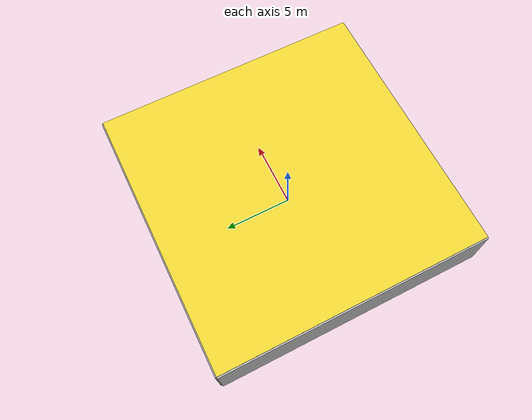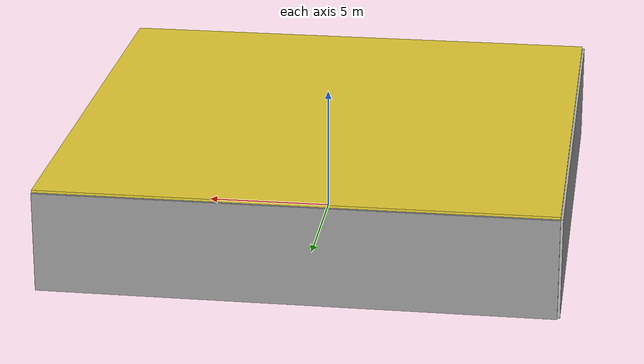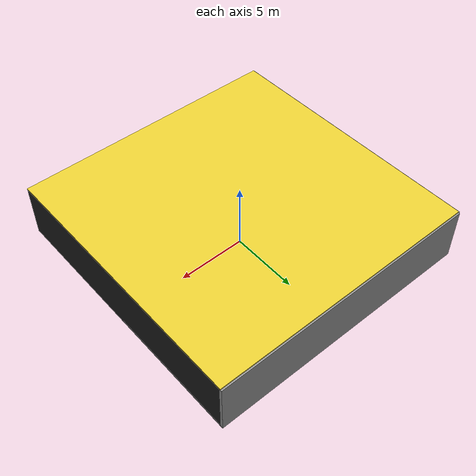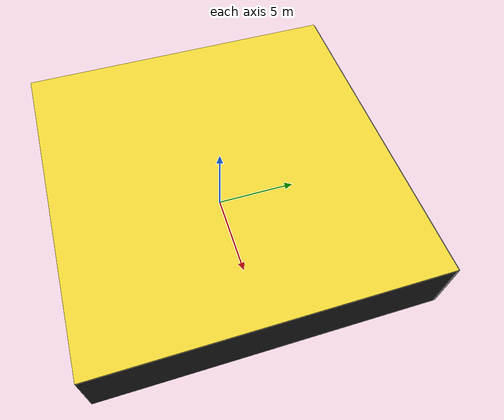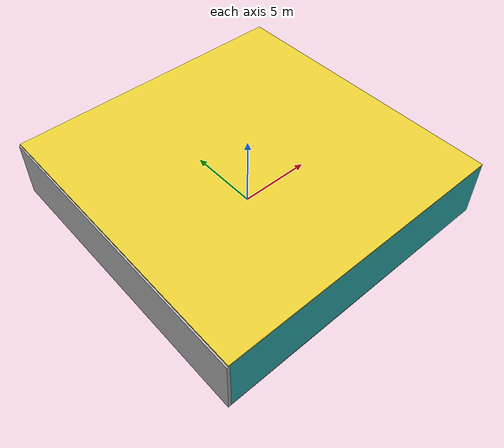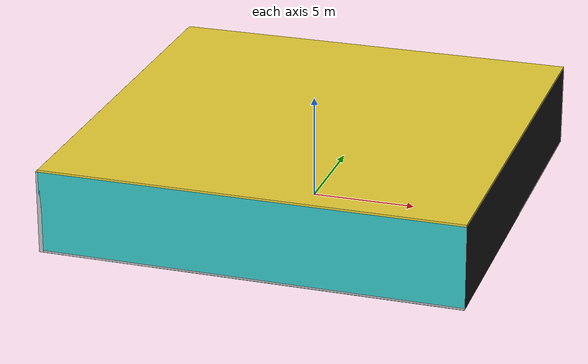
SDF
<sdf version="1.4">
 <world name="default">
  <physics type="ode">
   <max_step_size>0.001</max_step_size>
   <real_time_factor>1</real_time_factor>
   <real_time_update_rate>1000</real_time_update_rate>
   <gravity>0 0 -9.8</gravity>
  </physics>
  <scene><ambient>0.4 0.4 0.4 1</ambient><background>0.7 0.7 0.7 1</background><shadows>1</shadows></scene>
  <model name="Surrounding">
   <static>1</static>
   <link name="Ceiling">
    <collision name="Ceiling_Collision"><geometry><box><size>20 20 0.1</size></box></geometry></collision>
    <visual name="Ceiling_Visual">
     <geometry><box><size>20 20 0.1</size></box></geometry>
     <material>
      <script><uri>file://media/materials/scripts/gazebo.material</uri><name>Gazebo/ZincYellow</name></script>
     </material>
    </visual>
    <pose>0 0 4.05 0 0 0</pose>
   </link>
   <link name="Wall_South">
    <collision name="Wall_South_Collision">
     <geometry><box><size>20 0 4</size></box></geometry>
     <pose>0 0 2 0 -0 0</pose>
    </collision>
    <visual name="Wall_South_Visual">
     <pose>0 0 2 0 -0 0</pose>
     <geometry><box><size>20 0 4</size></box></geometry>
     <material>
      <script><uri>file://media/materials/scripts/gazebo.material</uri><name>Gazebo/Turquoise</name></script>
     </material>
    </visual>
    <velocity_decay><linear>0</linear><angular>0</angular></velocity_decay>
    <pose>0 -10 0 0 -0 0</pose>
   </link>
   <link name="Wall_East">
    <collision name="Wall_21_Collision">
     <geometry><box><size>20 0 4</size></box></geometry>
     <pose>0 0 2 0 -0 0</pose>
    </collision>
    <visual name="Wall_21_Visual">
     <pose>0 0 2 0 -0 0</pose>
     <geometry><box><size>20 0 4</size></box></geometry>
     <material>
      <script><uri>file://media/materials/scripts/gazebo.material</uri><name>Gazebo/FlatBlack</name></script>
     </material>
    </visual>
    <velocity_decay><linear>0</linear><angular>0</angular></velocity_decay>
    <pose>10 0 0 0 -0 1.5708</pose>
   </link>
   <link name="Wall_North">
    <collision name="Wall_22_Collision">
     <geometry><box><size>20 0.2 4</size></box></geometry>
     <pose>0 0 2 0 -0 0</pose>
    </collision>
    <visual name="Wall_22_Visual">
     <pose>0 0 2 0 -0 0</pose>
     <geometry><box><size>20 0.2 4</size></box></geometry>
     <material>
      <script><uri>file://media/materials/scripts/gazebo.material</uri><name>Gazebo/GreyGradientSky</name></script>
     </material>
    </visual>
    <velocity_decay><linear>0</linear><angular>0</angular></velocity_decay>
    <pose>0 10 0 0 -0 0</pose>
   </link>
   <link name="Wall_West">
    <collision name="Wall_23_Collision">
     <geometry><box><size>20 0.2 4</size></box></geometry>
     <pose>0 0 2 0 -0 0</pose>
    </collision>
    <visual name="Wall_23_Visual">
     <pose>0 0 2 0 -0 0</pose>
     <geometry><box><size>20 0.2 4</size></box></geometry>
     <material>
      <script><uri>file://media/materials/scripts/gazebo.material</uri><name>Gazebo/PioneerBody</name></script>
     </material>
    </visual>
    <velocity_decay><linear>0</linear><angular>0</angular></velocity_decay>
    <pose>-10 0 0 0 0 -1.5708</pose>
   </link>
   <link name="Ground_link">
    <collision name="collision">
     <pose>0 0 .05 0 -0 0</pose>
     <geometry><box><size>20 20 0.1</size></box></geometry>
    </collision>
    <visual name="visual">
     <pose>0 0 .05 0 -0 0</pose>
     <geometry><box><size>20 20 0.1</size></box></geometry>
     <material>
      <script><uri>file://media/materials/scripts/gazebo.material</uri><name>Gazebo/PioneerBody</name></script>
     </material>
    </visual>
   </link>
   <static>1</static>
  </model>
  <spherical_coordinates>
   <surface_model>EARTH_WGS84</surface_model>
   <latitude_deg>0</latitude_deg>
   <longitude_deg>0</longitude_deg>
   <elevation>0</elevation>
   <heading_deg>0</heading_deg>
  </spherical_coordinates>
  <light name="lightball_0" type="diffuse">
   <diffuse>0.8 0.8 0.8 1</diffuse>
   <specular>0.2 0.2 0.2 1</specular>
   <attenuation>
    <range>100</range>
    <constant>0.7</constant>
    <linear>0.01</linear>
    <quadratic>0.001</quadratic>
   </attenuation>
   <direction>-0.5 0.1 -0.9</direction>
   <pose>4.60912602959 -9.05932097512 1.69773850497 0 0 0</pose>
  </light>
  <light name="lightball_1" type="diffuse">
   <diffuse>0.8 0.8 0.8 1</diffuse>
   <specular>0.2 0.2 0.2 1</specular>
   <attenuation>
    <range>100</range>
    <constant>0.7</constant>
    <linear>0.01</linear>
    <quadratic>0.001</quadratic>
   </attenuation>
   <direction>-0.5 0.1 -0.9</direction>
   <pose>-0.503643406516 1.7288000886 2.5571509189 0 0 0</pose>
  </light>
  <light name="lightball_2" type="diffuse">
   <diffuse>0.8 0.8 0.8 1</diffuse>
   <specular>0.2 0.2 0.2 1</specular>
   <attenuation>
    <range>100</range>
    <constant>0.7</constant>
    <linear>0.01</linear>
    <quadratic>0.001</quadratic>
   </attenuation>
   <direction>-0.5 0.1 -0.9</direction>
   <pose>0.613130101261 8.39001754633 1.70651985029 0 0 0</pose>
  </light>
  <light name="lightball_3" type="diffuse">
   <diffuse>0.8 0.8 0.8 1</diffuse>
   <specular>0.2 0.2 0.2 1</specular>
   <attenuation>
    <range>100</range>
    <constant>0.7</constant>
    <linear>0.01</linear>
    <quadratic>0.001</quadratic>
   </attenuation>
   <direction>-0.5 0.1 -0.9</direction>
   <pose>7.92157115056 8.50523551851 2.05483833613 0 0 0</pose>
  </light>
  <light name="lightball_4" type="diffuse">
   <diffuse>0.8 0.8 0.8 1</diffuse>
   <specular>0.2 0.2 0.2 1</specular>
   <attenuation>
    <range>100</range>
    <constant>0.7</constant>
    <linear>0.01</linear>
    <quadratic>0.001</quadratic>
   </attenuation>
   <direction>-0.5 0.1 -0.9</direction>
   <pose>7.24344897972 -0.100753974945 2.08916136299 0 0 0</pose>
  </light>
  <light name="lightball_5" type="diffuse">
   <diffuse>0.8 0.8 0.8 1</diffuse>
   <specular>0.2 0.2 0.2 1</specular>
   <attenuation>
    <range>100</range>
    <constant>0.7</constant>
    <linear>0.01</linear>
    <quadratic>0.001</quadratic>
   </attenuation>
   <direction>-0.5 0.1 -0.9</direction>
   <pose>-7.38255898412 -5.04367644497 2.34982618559 0 0 0</pose>
  </light>
  <light name="lightball_6" type="diffuse">
   <diffuse>0.8 0.8 0.8 1</diffuse>
   <specular>0.2 0.2 0.2 1</specular>
   <attenuation>
    <range>100</range>
    <constant>0.7</constant>
    <linear>0.01</linear>
    <quadratic>0.001</quadratic>
   </attenuation>
   <direction>-0.5 0.1 -0.9</direction>
   <pose>-1.19250443264 -7.32526457951 3.22059563762 0 0 0</pose>
  </light>
  <light name="lightball_7" type="diffuse">
   <diffuse>0.8 0.8 0.8 1</diffuse>
   <specular>0.2 0.2 0.2 1</specular>
   <attenuation>
    <range>100</range>
    <constant>0.7</constant>
    <linear>0.01</linear>
    <quadratic>0.001</quadratic>
   </attenuation>
   <direction>-0.5 0.1 -0.9</direction>
   <pose>4.13018330333 -1.49516430921 2.12728119698 0 0 0</pose>
  </light>
  <light name="lightball_8" type="diffuse">
   <diffuse>0.8 0.8 0.8 1</diffuse>
   <specular>0.2 0.2 0.2 1</specular>
   <attenuation>
    <range>100</range>
    <constant>0.7</constant>
    <linear>0.01</linear>
    <quadratic>0.001</quadratic>
   </attenuation>
   <direction>-0.5 0.1 -0.9</direction>
   <pose>1.27246823989 -1.72868148563 2.7664325409 0 0 0</pose>
  </light>
  <light name="lightball_9" type="diffuse">
   <diffuse>0.8 0.8 0.8 1</diffuse>
   <specular>0.2 0.2 0.2 1</specular>
   <attenuation>
    <range>100</range>
    <constant>0.7</constant>
    <linear>0.01</linear>
    <quadratic>0.001</quadratic>
   </attenuation>
   <direction>-0.5 0.1 -0.9</direction>
   <pose>0.169196584648 -2.38551404277 3.49490582748 0 0 0</pose>
  </light>
  <light name="lightball_10" type="diffuse">
   <diffuse>0.8 0.8 0.8 1</diffuse>
   <specular>0.2 0.2 0.2 1</specular>
   <attenuation>
    <range>100</range>
    <constant>0.7</constant>
    <linear>0.01</linear>
    <quadratic>0.001</quadratic>
   </attenuation>
   <direction>-0.5 0.1 -0.9</direction>
   <pose>-5.87376494429 1.22936355111 2.61590767561 0 0 0</pose>
  </light>
  <light name="lightball_11" type="diffuse">
   <diffuse>0.8 0.8 0.8 1</diffuse>
   <specular>0.2 0.2 0.2 1</specular>
   <attenuation>
    <range>100</range>
    <constant>0.7</constant>
    <linear>0.01</linear>
    <quadratic>0.001</quadratic>
   </attenuation>
   <direction>-0.5 0.1 -0.9</direction>
   <pose>-4.44299146019 8.50423867331 2.84861284082 0 0 0</pose>
  </light>
  <include><uri>model://cabinet</uri><pose>1.89883471198 7.34195778302 0 0 0 2.95735619803</pose></include>
  <include>
   <uri>model://construction_cone</uri>
   <pose>7.50059805153 -4.50531067668 0 0 0 2.2670063902</pose>
  </include>
 </world>
</sdf>

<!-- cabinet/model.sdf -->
<sdf version="1.5">
  <model name="cabinet">
    <static>true</static>
    <link name="cabinet_bottom_plate">
      <inertial>
        <pose>0 0 -1 0 0 0</pose>
        <inertia>
          <ixx>2.050000</ixx>
          <ixy>0</ixy>
          <ixz>0</ixz>
          <iyy>2.050000</iyy>
          <iyz>0</iyz>
          <izz>2.050000</izz>
        </inertia>
        <mass>25.000000</mass>
      </inertial>
      <collision name="cabinet_bottom_plate_geom">
        <pose>0 0 0.010000 0 0 0</pose>
        <geometry>
          <box>
            <size>0.450000 0.450000 0.020000</size>
          </box>
        </geometry>
      </collision>
      <visual name="cabinet_bottom_plate_geom_visual">
        <pose>0 0 0.010000 0 0 0</pose>
        <geometry>
          <box>
            <size>0.450000 0.450000 0.020000</size>
          </box>
        </geometry>
        <material>
          <script>
            <uri>model://media/materials/scripts/gazebo.material</uri>
            <name>Gazebo/Wood</name>
          </script>
        </material>
      </visual>
      <collision name="cabinet_bottom_plate_geom_cabinet_back_plate">
        <pose>0.235000 0 0.510000 0 0 0</pose>
        <geometry>
          <box>
            <size>0.020000 0.450000 1.020000</size>
          </box>
        </geometry>
      </collision>
      <visual name="cabinet_bottom_plate_geom_cabinet_back_plate_visual">
        <pose>0.235000 0 0.510000 0 0 0</pose>
        <geometry>
          <box>
            <size>0.020000 0.450000 1.020000</size>
          </box>
        </geometry>
        <material>
          <script>
            <uri>model://media/materials/scripts/gazebo.material</uri>
            <name>Gazebo/Wood</name>
          </script>
        </material>
      </visual>
      <collision name="cabinet_bottom_plate_geom_cabinet_left_plate">
        <pose>0 0.235000 0.510000 0 0 0</pose>
        <geometry>
          <box>
            <size>0.450000 0.020000 1.020000</size>
          </box>
        </geometry>
      </collision>
      <visual name="cabinet_bottom_plate_geom_cabinet_left_plate_visual">
        <pose>0 0.235000 0.510000 0 0 0</pose>
        <geometry>
          <box>
            <size>0.450000 0.020000 1.020000</size>
          </box>
        </geometry>
        <material>
          <script>
            <uri>model://media/materials/scripts/gazebo.material</uri>
            <name>Gazebo/Wood</name>
          </script>
        </material>
      </visual>
      <collision name="cabinet_bottom_plate_geom_cabinet_middle_plate">
        <pose>0 0 0.510000 0 0 0</pose>
        <geometry>
          <box>
            <size>0.450000 0.450000 0.020000</size>
          </box>
        </geometry>
      </collision>
      <visual name="cabinet_bottom_plate_geom_cabinet_middle_plate_visual">
        <pose>0 0 0.510000 0 0 0</pose>
        <geometry>
          <box>
            <size>0.450000 0.450000 0.020000</size>
          </box>
        </geometry>
        <material>
          <script>
            <uri>model://media/materials/scripts/gazebo.material</uri>
            <name>Gazebo/Wood</name>
          </script>
        </material>
      </visual>
      <collision name="cabinet_bottom_plate_geom_cabinet_right_plate">
        <pose>0 -0.235000 0.510000 0 0 0</pose>
        <geometry>
          <box>
            <size>0.450000 0.020000 1.020000</size>
          </box>
        </geometry>
      </collision>
      <visual name="cabinet_bottom_plate_geom_cabinet_right_plate_visual">
        <pose>0 -0.235000 0.510000 0 0 0</pose>
        <geometry>
          <box>
            <size>0.450000 0.020000 1.020000</size>
          </box>
        </geometry>
        <material>
          <script>
            <uri>model://media/materials/scripts/gazebo.material</uri>
            <name>Gazebo/Wood</name>
          </script>
        </material>
      </visual>
      <collision name="cabinet_bottom_plate_geom_cabinet_top_plate">
        <pose>0 0 1.010000 0 0 0</pose>
        <geometry>
          <box>
            <size>0.450000 0.450000 0.020000</size>
          </box>
        </geometry>
      </collision>
      <visual name="cabinet_bottom_plate_geom_cabinet_top_plate_visual">
        <pose>0 0 1.010000 0 0 0</pose>
        <geometry>
          <box>
            <size>0.450000 0.450000 0.020000</size>
          </box>
        </geometry>
        <material>
          <script>
            <uri>model://media/materials/scripts/gazebo.material</uri>
            <name>Gazebo/Wood</name>
          </script>
        </material>
      </visual>
    </link>
  </model>
</sdf>

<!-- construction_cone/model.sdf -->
<sdf version="1.5">
  <model name="Construction Cone">
    <link name="link">
      <collision name="collision">
        <geometry>
          <mesh>
            <scale>10 10 10</scale>
            <uri>file://isr-testbed/construction_cone/meshes/construction_cone.dae</uri>
          </mesh>
        </geometry>
      </collision>
      <visual name="visual">
        <geometry>
          <mesh>
            <scale>10 10 10</scale>
            <uri>file://isr-testbed/construction_cone/meshes/construction_cone.dae</uri>
          </mesh>
        </geometry>
      </visual>
    </link>
  </model>
</sdf>
